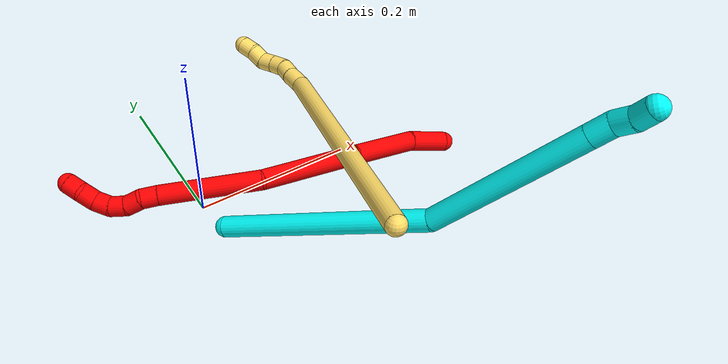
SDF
<sdf version="1.7">
 <world name="default">
  <model name="2">
   <static>0</static>
   <link name="2">
    <collision name="collision-cylinder-e_1_1_4">
     <pose>-0.020069 0.010309 0.005389 -1.0891 -1.04548 0.671513</pose>
     <geometry><cylinder><radius>0.0125</radius><length>0.046394</length></cylinder></geometry>
     <surface>
      <friction><ode><mu>1.16</mu><mu2>1.16</mu2><slip1>0</slip1><slip2>0</slip2></ode></friction>
      <contact><ode><kp>1e+06</kp><kd>1</kd><max_vel>0</max_vel><min_depth>0.001</min_depth></ode></contact>
     </surface>
    </collision>
    <visual name="visual-cylinder-e_1_1_4">
     <pose>-0.020069 0.010309 0.005389 -1.0891 -1.04548 0.671513</pose>
     <geometry><cylinder><radius>0.0125</radius><length>0.046394</length></cylinder></geometry>
     <material><ambient>1 0 0 1</ambient></material>
    </visual>
    <collision name="collision-cylinder-e_2_4_5">
     <pose>-0.078886 0.028485 0.021374 -0.638626 -1.24255 0.464795</pose>
     <geometry><cylinder><radius>0.0125</radius><length>0.081866</length></cylinder></geometry>
     <surface>
      <friction><ode><mu>1.16</mu><mu2>1.16</mu2><slip1>0</slip1><slip2>0</slip2></ode></friction>
      <contact><ode><kp>1e+06</kp><kd>1</kd><max_vel>0</max_vel><min_depth>0.001</min_depth></ode></contact>
     </surface>
    </collision>
    <visual name="visual-cylinder-e_2_4_5">
     <pose>-0.078886 0.028485 0.021374 -0.638626 -1.24255 0.464795</pose>
     <geometry><cylinder><radius>0.0125</radius><length>0.081866</length></cylinder></geometry>
     <material><ambient>1 0 0 1</ambient></material>
    </visual>
    <collision name="collision-cylinder-e_3_5_6">
     <pose>-0.177614 0.050603 0.040501 -1.0314 -1.30063 0.814248</pose>
     <geometry><cylinder><radius>0.0125</radius><length>0.124476</length></cylinder></geometry>
     <surface>
      <friction><ode><mu>1.16</mu><mu2>1.16</mu2><slip1>0</slip1><slip2>0</slip2></ode></friction>
      <contact><ode><kp>1e+06</kp><kd>1</kd><max_vel>0</max_vel><min_depth>0.001</min_depth></ode></contact>
     </surface>
    </collision>
    <visual name="visual-cylinder-e_3_5_6">
     <pose>-0.177614 0.050603 0.040501 -1.0314 -1.30063 0.814248</pose>
     <geometry><cylinder><radius>0.0125</radius><length>0.124476</length></cylinder></geometry>
     <material><ambient>1 0 0 1</ambient></material>
    </visual>
    <collision name="collision-cylinder-e_4_6_7">
     <pose>-0.294517 0.091608 0.043057 -1.79059 -1.12201 1.33008</pose>
     <geometry><cylinder><radius>0.0125</radius><length>0.126358</length></cylinder></geometry>
     <surface>
      <friction><ode><mu>1.16</mu><mu2>1.16</mu2><slip1>0</slip1><slip2>0</slip2></ode></friction>
      <contact><ode><kp>1e+06</kp><kd>1</kd><max_vel>0</max_vel><min_depth>0.001</min_depth></ode></contact>
     </surface>
    </collision>
    <visual name="visual-cylinder-e_4_6_7">
     <pose>-0.294517 0.091608 0.043057 -1.79059 -1.12201 1.33008</pose>
     <geometry><cylinder><radius>0.0125</radius><length>0.126358</length></cylinder></geometry>
     <material><ambient>1 0 0 1</ambient></material>
    </visual>
    <collision name="collision-cylinder-e_5_7_8">
     <pose>-0.361157 0.121968 0.036587 -1.70675 -1.21227 1.34271</pose>
     <geometry><cylinder><radius>0.0125</radius><length>0.020755</length></cylinder></geometry>
     <surface>
      <friction><ode><mu>1.16</mu><mu2>1.16</mu2><slip1>0</slip1><slip2>0</slip2></ode></friction>
      <contact><ode><kp>1e+06</kp><kd>1</kd><max_vel>0</max_vel><min_depth>0.001</min_depth></ode></contact>
     </surface>
    </collision>
    <visual name="visual-cylinder-e_5_7_8">
     <pose>-0.361157 0.121968 0.036587 -1.70675 -1.21227 1.34271</pose>
     <geometry><cylinder><radius>0.0125</radius><length>0.020755</length></cylinder></geometry>
     <material><ambient>1 0 0 1</ambient></material>
    </visual>
    <collision name="collision-cylinder-e_6_8_9">
     <pose>-0.37996 0.127688 0.032376 -2.62487 -1.1309 2.35237</pose>
     <geometry><cylinder><radius>0.0125</radius><length>0.020081</length></cylinder></geometry>
     <surface>
      <friction><ode><mu>1.16</mu><mu2>1.16</mu2><slip1>0</slip1><slip2>0</slip2></ode></friction>
      <contact><ode><kp>1e+06</kp><kd>1</kd><max_vel>0</max_vel><min_depth>0.001</min_depth></ode></contact>
     </surface>
    </collision>
    <visual name="visual-cylinder-e_6_8_9">
     <pose>-0.37996 0.127688 0.032376 -2.62487 -1.1309 2.35237</pose>
     <geometry><cylinder><radius>0.0125</radius><length>0.020081</length></cylinder></geometry>
     <material><ambient>1 0 0 1</ambient></material>
    </visual>
    <collision name="collision-cylinder-e_7_9_10">
     <pose>-0.397257 0.135188 0.026735 -1.91357 -0.96234 1.27499</pose>
     <geometry><cylinder><radius>0.0125</radius><length>0.020017</length></cylinder></geometry>
     <surface>
      <friction><ode><mu>1.16</mu><mu2>1.16</mu2><slip1>0</slip1><slip2>0</slip2></ode></friction>
      <contact><ode><kp>1e+06</kp><kd>1</kd><max_vel>0</max_vel><min_depth>0.001</min_depth></ode></contact>
     </surface>
    </collision>
    <visual name="visual-cylinder-e_7_9_10">
     <pose>-0.397257 0.135188 0.026735 -1.91357 -0.96234 1.27499</pose>
     <geometry><cylinder><radius>0.0125</radius><length>0.020017</length></cylinder></geometry>
     <material><ambient>1 0 0 1</ambient></material>
    </visual>
    <collision name="collision-cylinder-e_8_10_11">
     <pose>-0.411472 0.148606 0.024867 -1.56398 -0.641886 0.637814</pose>
     <geometry><cylinder><radius>0.0125</radius><length>0.020052</length></cylinder></geometry>
     <surface>
      <friction><ode><mu>1.16</mu><mu2>1.16</mu2><slip1>0</slip1><slip2>0</slip2></ode></friction>
      <contact><ode><kp>1e+06</kp><kd>1</kd><max_vel>0</max_vel><min_depth>0.001</min_depth></ode></contact>
     </surface>
    </collision>
    <visual name="visual-cylinder-e_8_10_11">
     <pose>-0.411472 0.148606 0.024867 -1.56398 -0.641886 0.637814</pose>
     <geometry><cylinder><radius>0.0125</radius><length>0.020052</length></cylinder></geometry>
     <material><ambient>1 0 0 1</ambient></material>
    </visual>
    <collision name="collision-cylinder-e_9_11_12">
     <pose>-0.421968 0.165051 0.027927 -1.22783 -0.46599 0.33142</pose>
     <geometry><cylinder><radius>0.0125</radius><length>0.020001</length></cylinder></geometry>
     <surface>
      <friction><ode><mu>1.16</mu><mu2>1.16</mu2><slip1>0</slip1><slip2>0</slip2></ode></friction>
      <contact><ode><kp>1e+06</kp><kd>1</kd><max_vel>0</max_vel><min_depth>0.001</min_depth></ode></contact>
     </surface>
    </collision>
    <visual name="visual-cylinder-e_9_11_12">
     <pose>-0.421968 0.165051 0.027927 -1.22783 -0.46599 0.33142</pose>
     <geometry><cylinder><radius>0.0125</radius><length>0.020001</length></cylinder></geometry>
     <material><ambient>1 0 0 1</ambient></material>
    </visual>
    <collision name="collision-cylinder-e_10_12_2">
     <pose>-0.430517 0.1826 0.030647 -1.60191 -0.417652 0.430454</pose>
     <geometry><cylinder><radius>0.0125</radius><length>0.02</length></cylinder></geometry>
     <surface>
      <friction><ode><mu>1.16</mu><mu2>1.16</mu2><slip1>0</slip1><slip2>0</slip2></ode></friction>
      <contact><ode><kp>1e+06</kp><kd>1</kd><max_vel>0</max_vel><min_depth>0.001</min_depth></ode></contact>
     </surface>
    </collision>
    <visual name="visual-cylinder-e_10_12_2">
     <pose>-0.430517 0.1826 0.030647 -1.60191 -0.417652 0.430454</pose>
     <geometry><cylinder><radius>0.0125</radius><length>0.02</length></cylinder></geometry>
     <material><ambient>1 0 0 1</ambient></material>
    </visual>
    <collision name="collision-sphere-2">
     <pose>-0.434573 0.191737 0.030362 0 -0 0</pose>
     <geometry><sphere><radius>0.0125</radius></sphere></geometry>
     <surface>
      <friction><ode><mu>1.16</mu><mu2>1.16</mu2><slip1>0</slip1><slip2>0</slip2></ode></friction>
      <contact><ode><kp>1e+06</kp><kd>1</kd><max_vel>0</max_vel><min_depth>0.001</min_depth></ode></contact>
     </surface>
    </collision>
    <visual name="visual-sphere-2">
     <pose>-0.434573 0.191737 0.030362 0 -0 0</pose>
     <geometry><sphere><radius>0.0125</radius></sphere></geometry>
     <material><ambient>1 0 0 1</ambient></material>
    </visual>
    <collision name="collision-sphere-12">
     <pose>-0.426461 0.173464 0.030931 0 -0 0</pose>
     <geometry><sphere><radius>0.0125</radius></sphere></geometry>
     <surface>
      <friction><ode><mu>1.16</mu><mu2>1.16</mu2><slip1>0</slip1><slip2>0</slip2></ode></friction>
      <contact><ode><kp>1e+06</kp><kd>1</kd><max_vel>0</max_vel><min_depth>0.001</min_depth></ode></contact>
     </surface>
    </collision>
    <visual name="visual-sphere-12">
     <pose>-0.426461 0.173464 0.030931 0 -0 0</pose>
     <geometry><sphere><radius>0.0125</radius></sphere></geometry>
     <material><ambient>1 0 0 1</ambient></material>
    </visual>
    <collision name="collision-sphere-11">
     <pose>-0.417474 0.156637 0.024922 0 -0 0</pose>
     <geometry><sphere><radius>0.0125</radius></sphere></geometry>
     <surface>
      <friction><ode><mu>1.16</mu><mu2>1.16</mu2><slip1>0</slip1><slip2>0</slip2></ode></friction>
      <contact><ode><kp>1e+06</kp><kd>1</kd><max_vel>0</max_vel><min_depth>0.001</min_depth></ode></contact>
     </surface>
    </collision>
    <visual name="visual-sphere-11">
     <pose>-0.417474 0.156637 0.024922 0 -0 0</pose>
     <geometry><sphere><radius>0.0125</radius></sphere></geometry>
     <material><ambient>1 0 0 1</ambient></material>
    </visual>
    <collision name="collision-sphere-10">
     <pose>-0.405469 0.140576 0.024813 0 -0 0</pose>
     <geometry><sphere><radius>0.0125</radius></sphere></geometry>
     <surface>
      <friction><ode><mu>1.16</mu><mu2>1.16</mu2><slip1>0</slip1><slip2>0</slip2></ode></friction>
      <contact><ode><kp>1e+06</kp><kd>1</kd><max_vel>0</max_vel><min_depth>0.001</min_depth></ode></contact>
     </surface>
    </collision>
    <visual name="visual-sphere-10">
     <pose>-0.405469 0.140576 0.024813 0 -0 0</pose>
     <geometry><sphere><radius>0.0125</radius></sphere></geometry>
     <material><ambient>1 0 0 1</ambient></material>
    </visual>
    <collision name="collision-sphere-9">
     <pose>-0.389045 0.1298 0.028658 0 -0 0</pose>
     <geometry><sphere><radius>0.0125</radius></sphere></geometry>
     <surface>
      <friction><ode><mu>1.16</mu><mu2>1.16</mu2><slip1>0</slip1><slip2>0</slip2></ode></friction>
      <contact><ode><kp>1e+06</kp><kd>1</kd><max_vel>0</max_vel><min_depth>0.001</min_depth></ode></contact>
     </surface>
    </collision>
    <visual name="visual-sphere-9">
     <pose>-0.389045 0.1298 0.028658 0 -0 0</pose>
     <geometry><sphere><radius>0.0125</radius></sphere></geometry>
     <material><ambient>1 0 0 1</ambient></material>
    </visual>
    <collision name="collision-sphere-4">
     <pose>-0.040138 0.020618 0.010779 0 -0 0</pose>
     <geometry><sphere><radius>0.0125</radius></sphere></geometry>
     <surface>
      <friction><ode><mu>1.16</mu><mu2>1.16</mu2><slip1>0</slip1><slip2>0</slip2></ode></friction>
      <contact><ode><kp>1e+06</kp><kd>1</kd><max_vel>0</max_vel><min_depth>0.001</min_depth></ode></contact>
     </surface>
    </collision>
    <visual name="visual-sphere-4">
     <pose>-0.040138 0.020618 0.010779 0 -0 0</pose>
     <geometry><sphere><radius>0.0125</radius></sphere></geometry>
     <material><ambient>1 0 0 1</ambient></material>
    </visual>
    <collision name="collision-sphere-1">
     <geometry><sphere><radius>0.0125</radius></sphere></geometry>
     <surface>
      <friction><ode><mu>1.16</mu><mu2>1.16</mu2><slip1>0</slip1><slip2>0</slip2></ode></friction>
      <contact><ode><kp>1e+06</kp><kd>1</kd><max_vel>0</max_vel><min_depth>0.001</min_depth></ode></contact>
     </surface>
    </collision>
    <visual name="visual-sphere-1">
     <geometry><sphere><radius>0.0125</radius></sphere></geometry>
     <material><ambient>1 0 0 1</ambient></material>
    </visual>
    <collision name="collision-sphere-8">
     <pose>-0.370875 0.125575 0.036093 0 -0 0</pose>
     <geometry><sphere><radius>0.0125</radius></sphere></geometry>
     <surface>
      <friction><ode><mu>1.16</mu><mu2>1.16</mu2><slip1>0</slip1><slip2>0</slip2></ode></friction>
      <contact><ode><kp>1e+06</kp><kd>1</kd><max_vel>0</max_vel><min_depth>0.001</min_depth></ode></contact>
     </surface>
    </collision>
    <visual name="visual-sphere-8">
     <pose>-0.370875 0.125575 0.036093 0 -0 0</pose>
     <geometry><sphere><radius>0.0125</radius></sphere></geometry>
     <material><ambient>1 0 0 1</ambient></material>
    </visual>
    <collision name="collision-sphere-5">
     <pose>-0.117634 0.036351 0.03197 0 -0 0</pose>
     <geometry><sphere><radius>0.0125</radius></sphere></geometry>
     <surface>
      <friction><ode><mu>1.16</mu><mu2>1.16</mu2><slip1>0</slip1><slip2>0</slip2></ode></friction>
      <contact><ode><kp>1e+06</kp><kd>1</kd><max_vel>0</max_vel><min_depth>0.001</min_depth></ode></contact>
     </surface>
    </collision>
    <visual name="visual-sphere-5">
     <pose>-0.117634 0.036351 0.03197 0 -0 0</pose>
     <geometry><sphere><radius>0.0125</radius></sphere></geometry>
     <material><ambient>1 0 0 1</ambient></material>
    </visual>
    <collision name="collision-sphere-6">
     <pose>-0.237594 0.064856 0.049033 0 -0 0</pose>
     <geometry><sphere><radius>0.0125</radius></sphere></geometry>
     <surface>
      <friction><ode><mu>1.16</mu><mu2>1.16</mu2><slip1>0</slip1><slip2>0</slip2></ode></friction>
      <contact><ode><kp>1e+06</kp><kd>1</kd><max_vel>0</max_vel><min_depth>0.001</min_depth></ode></contact>
     </surface>
    </collision>
    <visual name="visual-sphere-6">
     <pose>-0.237594 0.064856 0.049033 0 -0 0</pose>
     <geometry><sphere><radius>0.0125</radius></sphere></geometry>
     <material><ambient>1 0 0 1</ambient></material>
    </visual>
    <collision name="collision-sphere-7">
     <pose>-0.35144 0.11836 0.03708 0 -0 0</pose>
     <geometry><sphere><radius>0.0125</radius></sphere></geometry>
     <surface>
      <friction><ode><mu>1.16</mu><mu2>1.16</mu2><slip1>0</slip1><slip2>0</slip2></ode></friction>
      <contact><ode><kp>1e+06</kp><kd>1</kd><max_vel>0</max_vel><min_depth>0.001</min_depth></ode></contact>
     </surface>
    </collision>
    <visual name="visual-sphere-7">
     <pose>-0.35144 0.11836 0.03708 0 -0 0</pose>
     <geometry><sphere><radius>0.0125</radius></sphere></geometry>
     <material><ambient>1 0 0 1</ambient></material>
    </visual>
    <inertial>
     <pose>-0.230182 0.076838 0.032193 0 -0 0</pose>
     <mass>0.5</mass>
     <inertia>
      <ixx>0.000154</ixx>
      <ixy>0</ixy>
      <ixz>0</ixz>
      <iyy>0.000491</iyy>
      <iyz>0</iyz>
      <izz>0.000249</izz>
     </inertia>
    </inertial>
   </link>
   <pose>0.31581 -0.066591 0.011584 0.387504 -0.183527 0.012419</pose>
  </model>
  <model name="3">
   <static>0</static>
   <link name="3">
    <collision name="collision-cylinder-e_1_1_4">
     <pose>-0.012955 -0.010179 0.123919 0.081958 -0.103815 -0.00426</pose>
     <geometry><cylinder><radius>0.0125</radius><length>0.25002</length></cylinder></geometry>
     <surface>
      <friction><ode><mu>1.16</mu><mu2>1.16</mu2><slip1>0</slip1><slip2>0</slip2></ode></friction>
      <contact><ode><kp>1e+06</kp><kd>1</kd><max_vel>0</max_vel><min_depth>0.001</min_depth></ode></contact>
     </surface>
    </collision>
    <visual name="visual-cylinder-e_1_1_4">
     <pose>-0.012955 -0.010179 0.123919 0.081958 -0.103815 -0.00426</pose>
     <geometry><cylinder><radius>0.0125</radius><length>0.25002</length></cylinder></geometry>
     <material><ambient>0.003922 1 0.996078 1</ambient></material>
    </visual>
    <collision name="collision-cylinder-e_2_4_5">
     <pose>0.003394 -0.013154 0.334978 -0.082488 0.323372 -0.013462</pose>
     <geometry><cylinder><radius>0.0125</radius><length>0.184432</length></cylinder></geometry>
     <surface>
      <friction><ode><mu>1.16</mu><mu2>1.16</mu2><slip1>0</slip1><slip2>0</slip2></ode></friction>
      <contact><ode><kp>1e+06</kp><kd>1</kd><max_vel>0</max_vel><min_depth>0.001</min_depth></ode></contact>
     </surface>
    </collision>
    <visual name="visual-cylinder-e_2_4_5">
     <pose>0.003394 -0.013154 0.334978 -0.082488 0.323372 -0.013462</pose>
     <geometry><cylinder><radius>0.0125</radius><length>0.184432</length></cylinder></geometry>
     <material><ambient>0.003922 1 0.996078 1</ambient></material>
    </visual>
    <collision name="collision-cylinder-e_3_5_6">
     <pose>0.036544 -0.005002 0.433556 -0.082598 0.32339 -0.013481</pose>
     <geometry><cylinder><radius>0.0125</radius><length>0.024213</length></cylinder></geometry>
     <surface>
      <friction><ode><mu>1.16</mu><mu2>1.16</mu2><slip1>0</slip1><slip2>0</slip2></ode></friction>
      <contact><ode><kp>1e+06</kp><kd>1</kd><max_vel>0</max_vel><min_depth>0.001</min_depth></ode></contact>
     </surface>
    </collision>
    <visual name="visual-cylinder-e_3_5_6">
     <pose>0.036544 -0.005002 0.433556 -0.082598 0.32339 -0.013481</pose>
     <geometry><cylinder><radius>0.0125</radius><length>0.024213</length></cylinder></geometry>
     <material><ambient>0.003922 1 0.996078 1</ambient></material>
    </visual>
    <collision name="collision-cylinder-e_4_6_7">
     <pose>0.040929 -0.000775 0.454947 -0.318437 0.05123 -0.008228</pose>
     <geometry><cylinder><radius>0.0125</radius><length>0.020982</length></cylinder></geometry>
     <surface>
      <friction><ode><mu>1.16</mu><mu2>1.16</mu2><slip1>0</slip1><slip2>0</slip2></ode></friction>
      <contact><ode><kp>1e+06</kp><kd>1</kd><max_vel>0</max_vel><min_depth>0.001</min_depth></ode></contact>
     </surface>
    </collision>
    <visual name="visual-cylinder-e_4_6_7">
     <pose>0.040929 -0.000775 0.454947 -0.318437 0.05123 -0.008228</pose>
     <geometry><cylinder><radius>0.0125</radius><length>0.020982</length></cylinder></geometry>
     <material><ambient>0.003922 1 0.996078 1</ambient></material>
    </visual>
    <collision name="collision-cylinder-e_5_7_2">
     <pose>0.044528 0.006626 0.473684 -0.438473 0.305598 -0.068601</pose>
     <geometry><cylinder><radius>0.0125</radius><length>0.020354</length></cylinder></geometry>
     <surface>
      <friction><ode><mu>1.16</mu><mu2>1.16</mu2><slip1>0</slip1><slip2>0</slip2></ode></friction>
      <contact><ode><kp>1e+06</kp><kd>1</kd><max_vel>0</max_vel><min_depth>0.001</min_depth></ode></contact>
     </surface>
    </collision>
    <visual name="visual-cylinder-e_5_7_2">
     <pose>0.044528 0.006626 0.473684 -0.438473 0.305598 -0.068601</pose>
     <geometry><cylinder><radius>0.0125</radius><length>0.020354</length></cylinder></geometry>
     <material><ambient>0.003922 1 0.996078 1</ambient></material>
    </visual>
    <collision name="collision-sphere-2">
     <pose>0.04759 0.010746 0.482472 0 -0 0</pose>
     <geometry><sphere><radius>0.0125</radius></sphere></geometry>
     <surface>
      <friction><ode><mu>1.16</mu><mu2>1.16</mu2><slip1>0</slip1><slip2>0</slip2></ode></friction>
      <contact><ode><kp>1e+06</kp><kd>1</kd><max_vel>0</max_vel><min_depth>0.001</min_depth></ode></contact>
     </surface>
    </collision>
    <visual name="visual-sphere-2">
     <pose>0.04759 0.010746 0.482472 0 -0 0</pose>
     <geometry><sphere><radius>0.0125</radius></sphere></geometry>
     <material><ambient>0.003922 1 0.996078 1</ambient></material>
    </visual>
    <collision name="collision-sphere-7">
     <pose>0.041466 0.002505 0.464897 0 -0 0</pose>
     <geometry><sphere><radius>0.0125</radius></sphere></geometry>
     <surface>
      <friction><ode><mu>1.16</mu><mu2>1.16</mu2><slip1>0</slip1><slip2>0</slip2></ode></friction>
      <contact><ode><kp>1e+06</kp><kd>1</kd><max_vel>0</max_vel><min_depth>0.001</min_depth></ode></contact>
     </surface>
    </collision>
    <visual name="visual-sphere-7">
     <pose>0.041466 0.002505 0.464897 0 -0 0</pose>
     <geometry><sphere><radius>0.0125</radius></sphere></geometry>
     <material><ambient>0.003922 1 0.996078 1</ambient></material>
    </visual>
    <collision name="collision-sphere-6">
     <pose>0.040391 -0.004055 0.444996 0 -0 0</pose>
     <geometry><sphere><radius>0.0125</radius></sphere></geometry>
     <surface>
      <friction><ode><mu>1.16</mu><mu2>1.16</mu2><slip1>0</slip1><slip2>0</slip2></ode></friction>
      <contact><ode><kp>1e+06</kp><kd>1</kd><max_vel>0</max_vel><min_depth>0.001</min_depth></ode></contact>
     </surface>
    </collision>
    <visual name="visual-sphere-6">
     <pose>0.040391 -0.004055 0.444996 0 -0 0</pose>
     <geometry><sphere><radius>0.0125</radius></sphere></geometry>
     <material><ambient>0.003922 1 0.996078 1</ambient></material>
    </visual>
    <collision name="collision-sphere-5">
     <pose>0.032697 -0.005949 0.422117 0 -0 0</pose>
     <geometry><sphere><radius>0.0125</radius></sphere></geometry>
     <surface>
      <friction><ode><mu>1.16</mu><mu2>1.16</mu2><slip1>0</slip1><slip2>0</slip2></ode></friction>
      <contact><ode><kp>1e+06</kp><kd>1</kd><max_vel>0</max_vel><min_depth>0.001</min_depth></ode></contact>
     </surface>
    </collision>
    <visual name="visual-sphere-5">
     <pose>0.032697 -0.005949 0.422117 0 -0 0</pose>
     <geometry><sphere><radius>0.0125</radius></sphere></geometry>
     <material><ambient>0.003922 1 0.996078 1</ambient></material>
    </visual>
    <collision name="collision-sphere-1">
     <geometry><sphere><radius>0.0125</radius></sphere></geometry>
     <surface>
      <friction><ode><mu>1.16</mu><mu2>1.16</mu2><slip1>0</slip1><slip2>0</slip2></ode></friction>
      <contact><ode><kp>1e+06</kp><kd>1</kd><max_vel>0</max_vel><min_depth>0.001</min_depth></ode></contact>
     </surface>
    </collision>
    <visual name="visual-sphere-1">
     <geometry><sphere><radius>0.0125</radius></sphere></geometry>
     <material><ambient>0.003922 1 0.996078 1</ambient></material>
    </visual>
    <collision name="collision-sphere-4">
     <pose>-0.025909 -0.020358 0.247839 0 -0 0</pose>
     <geometry><sphere><radius>0.0125</radius></sphere></geometry>
     <surface>
      <friction><ode><mu>1.16</mu><mu2>1.16</mu2><slip1>0</slip1><slip2>0</slip2></ode></friction>
      <contact><ode><kp>1e+06</kp><kd>1</kd><max_vel>0</max_vel><min_depth>0.001</min_depth></ode></contact>
     </surface>
    </collision>
    <visual name="visual-sphere-4">
     <pose>-0.025909 -0.020358 0.247839 0 -0 0</pose>
     <geometry><sphere><radius>0.0125</radius></sphere></geometry>
     <material><ambient>0.003922 1 0.996078 1</ambient></material>
    </visual>
    <inertial>
     <pose>7.4e-05 -0.009947 0.244895 0 -0 0</pose>
     <mass>0.5</mass>
     <inertia>
      <ixx>0.001804</ixx>
      <ixy>0</ixy>
      <ixz>0</ixz>
      <iyy>0.001829</iyy>
      <iyz>0</iyz>
      <izz>6.8e-05</izz>
     </inertia>
    </inertial>
   </link>
   <pose>0.005923 -0.050801 0.011499 0.838969 -0.786137 1.29088</pose>
  </model>
  <model name="5">
   <static>0</static>
   <link name="5">
    <collision name="collision-cylinder-e_1_1_4">
     <pose>0.056428 0.175845 -0.014145 -1.65106 0.30958 -0.335019</pose>
     <geometry><cylinder><radius>0.0125</radius><length>0.370437</length></cylinder></geometry>
     <surface>
      <friction><ode><mu>1.16</mu><mu2>1.16</mu2><slip1>0</slip1><slip2>0</slip2></ode></friction>
      <contact><ode><kp>1e+06</kp><kd>1</kd><max_vel>0</max_vel><min_depth>0.001</min_depth></ode></contact>
     </surface>
    </collision>
    <visual name="visual-cylinder-e_1_1_4">
     <pose>0.056428 0.175845 -0.014145 -1.65106 0.30958 -0.335019</pose>
     <geometry><cylinder><radius>0.0125</radius><length>0.370437</length></cylinder></geometry>
     <material><ambient>1 0.858824 0.4 1</ambient></material>
    </visual>
    <collision name="collision-cylinder-e_2_4_5">
     <pose>0.113132 0.365323 -0.02694 -1.47218 0.020058 -0.018172</pose>
     <geometry><cylinder><radius>0.0125</radius><length>0.027403</length></cylinder></geometry>
     <surface>
      <friction><ode><mu>1.16</mu><mu2>1.16</mu2><slip1>0</slip1><slip2>0</slip2></ode></friction>
      <contact><ode><kp>1e+06</kp><kd>1</kd><max_vel>0</max_vel><min_depth>0.001</min_depth></ode></contact>
     </surface>
    </collision>
    <visual name="visual-cylinder-e_2_4_5">
     <pose>0.113132 0.365323 -0.02694 -1.47218 0.020058 -0.018172</pose>
     <geometry><cylinder><radius>0.0125</radius><length>0.027403</length></cylinder></geometry>
     <material><ambient>1 0.858824 0.4 1</ambient></material>
    </visual>
    <collision name="collision-cylinder-e_3_5_6">
     <pose>0.114475 0.389849 -0.024123 -1.43678 0.09686 -0.084693</pose>
     <geometry><cylinder><radius>0.0125</radius><length>0.022089</length></cylinder></geometry>
     <surface>
      <friction><ode><mu>1.16</mu><mu2>1.16</mu2><slip1>0</slip1><slip2>0</slip2></ode></friction>
      <contact><ode><kp>1e+06</kp><kd>1</kd><max_vel>0</max_vel><min_depth>0.001</min_depth></ode></contact>
     </surface>
    </collision>
    <visual name="visual-cylinder-e_3_5_6">
     <pose>0.114475 0.389849 -0.024123 -1.43678 0.09686 -0.084693</pose>
     <geometry><cylinder><radius>0.0125</radius><length>0.022089</length></cylinder></geometry>
     <material><ambient>1 0.858824 0.4 1</ambient></material>
    </visual>
    <collision name="collision-cylinder-e_4_6_7">
     <pose>0.112885 0.410376 -0.023128 -1.61992 -0.268923 0.282294</pose>
     <geometry><cylinder><radius>0.0125</radius><length>0.020007</length></cylinder></geometry>
     <surface>
      <friction><ode><mu>1.16</mu><mu2>1.16</mu2><slip1>0</slip1><slip2>0</slip2></ode></friction>
      <contact><ode><kp>1e+06</kp><kd>1</kd><max_vel>0</max_vel><min_depth>0.001</min_depth></ode></contact>
     </surface>
    </collision>
    <visual name="visual-cylinder-e_4_6_7">
     <pose>0.112885 0.410376 -0.023128 -1.61992 -0.268923 0.282294</pose>
     <geometry><cylinder><radius>0.0125</radius><length>0.020007</length></cylinder></geometry>
     <material><ambient>1 0.858824 0.4 1</ambient></material>
    </visual>
    <collision name="collision-cylinder-e_5_7_8">
     <pose>0.106149 0.429156 -0.023713 -1.58305 -0.419304 0.424323</pose>
     <geometry><cylinder><radius>0.0125</radius><length>0.020033</length></cylinder></geometry>
     <surface>
      <friction><ode><mu>1.16</mu><mu2>1.16</mu2><slip1>0</slip1><slip2>0</slip2></ode></friction>
      <contact><ode><kp>1e+06</kp><kd>1</kd><max_vel>0</max_vel><min_depth>0.001</min_depth></ode></contact>
     </surface>
    </collision>
    <visual name="visual-cylinder-e_5_7_8">
     <pose>0.106149 0.429156 -0.023713 -1.58305 -0.419304 0.424323</pose>
     <geometry><cylinder><radius>0.0125</radius><length>0.020033</length></cylinder></geometry>
     <material><ambient>1 0.858824 0.4 1</ambient></material>
    </visual>
    <collision name="collision-cylinder-e_6_8_9">
     <pose>0.099238 0.446715 -0.019214 -1.06925 -0.287172 0.17081</pose>
     <geometry><cylinder><radius>0.0125</radius><length>0.020002</length></cylinder></geometry>
     <surface>
      <friction><ode><mu>1.16</mu><mu2>1.16</mu2><slip1>0</slip1><slip2>0</slip2></ode></friction>
      <contact><ode><kp>1e+06</kp><kd>1</kd><max_vel>0</max_vel><min_depth>0.001</min_depth></ode></contact>
     </surface>
    </collision>
    <visual name="visual-cylinder-e_6_8_9">
     <pose>0.099238 0.446715 -0.019214 -1.06925 -0.287172 0.17081</pose>
     <geometry><cylinder><radius>0.0125</radius><length>0.020002</length></cylinder></geometry>
     <material><ambient>1 0.858824 0.4 1</ambient></material>
    </visual>
    <collision name="collision-cylinder-e_7_9_2">
     <pose>0.093124 0.464253 -0.012112 -1.30446 -0.333833 0.255946</pose>
     <geometry><cylinder><radius>0.0125</radius><length>0.020029</length></cylinder></geometry>
     <surface>
      <friction><ode><mu>1.16</mu><mu2>1.16</mu2><slip1>0</slip1><slip2>0</slip2></ode></friction>
      <contact><ode><kp>1e+06</kp><kd>1</kd><max_vel>0</max_vel><min_depth>0.001</min_depth></ode></contact>
     </surface>
    </collision>
    <visual name="visual-cylinder-e_7_9_2">
     <pose>0.093124 0.464253 -0.012112 -1.30446 -0.333833 0.255946</pose>
     <geometry><cylinder><radius>0.0125</radius><length>0.020029</length></cylinder></geometry>
     <material><ambient>1 0.858824 0.4 1</ambient></material>
    </visual>
    <collision name="collision-sphere-2">
     <pose>0.089843 0.473381 -0.009622 0 -0 0</pose>
     <geometry><sphere><radius>0.0125</radius></sphere></geometry>
     <surface>
      <friction><ode><mu>1.16</mu><mu2>1.16</mu2><slip1>0</slip1><slip2>0</slip2></ode></friction>
      <contact><ode><kp>1e+06</kp><kd>1</kd><max_vel>0</max_vel><min_depth>0.001</min_depth></ode></contact>
     </surface>
    </collision>
    <visual name="visual-sphere-2">
     <pose>0.089843 0.473381 -0.009622 0 -0 0</pose>
     <geometry><sphere><radius>0.0125</radius></sphere></geometry>
     <material><ambient>1 0.858824 0.4 1</ambient></material>
    </visual>
    <collision name="collision-sphere-9">
     <pose>0.096405 0.455125 -0.014602 0 -0 0</pose>
     <geometry><sphere><radius>0.0125</radius></sphere></geometry>
     <surface>
      <friction><ode><mu>1.16</mu><mu2>1.16</mu2><slip1>0</slip1><slip2>0</slip2></ode></friction>
      <contact><ode><kp>1e+06</kp><kd>1</kd><max_vel>0</max_vel><min_depth>0.001</min_depth></ode></contact>
     </surface>
    </collision>
    <visual name="visual-sphere-9">
     <pose>0.096405 0.455125 -0.014602 0 -0 0</pose>
     <geometry><sphere><radius>0.0125</radius></sphere></geometry>
     <material><ambient>1 0.858824 0.4 1</ambient></material>
    </visual>
    <collision name="collision-sphere-4">
     <pose>0.112857 0.351691 -0.028289 0 -0 0</pose>
     <geometry><sphere><radius>0.0125</radius></sphere></geometry>
     <surface>
      <friction><ode><mu>1.16</mu><mu2>1.16</mu2><slip1>0</slip1><slip2>0</slip2></ode></friction>
      <contact><ode><kp>1e+06</kp><kd>1</kd><max_vel>0</max_vel><min_depth>0.001</min_depth></ode></contact>
     </surface>
    </collision>
    <visual name="visual-sphere-4">
     <pose>0.112857 0.351691 -0.028289 0 -0 0</pose>
     <geometry><sphere><radius>0.0125</radius></sphere></geometry>
     <material><ambient>1 0.858824 0.4 1</ambient></material>
    </visual>
    <collision name="collision-sphere-1">
     <geometry><sphere><radius>0.0125</radius></sphere></geometry>
     <surface>
      <friction><ode><mu>1.16</mu><mu2>1.16</mu2><slip1>0</slip1><slip2>0</slip2></ode></friction>
      <contact><ode><kp>1e+06</kp><kd>1</kd><max_vel>0</max_vel><min_depth>0.001</min_depth></ode></contact>
     </surface>
    </collision>
    <visual name="visual-sphere-1">
     <geometry><sphere><radius>0.0125</radius></sphere></geometry>
     <material><ambient>1 0.858824 0.4 1</ambient></material>
    </visual>
    <collision name="collision-sphere-8">
     <pose>0.102071 0.438305 -0.023825 0 -0 0</pose>
     <geometry><sphere><radius>0.0125</radius></sphere></geometry>
     <surface>
      <friction><ode><mu>1.16</mu><mu2>1.16</mu2><slip1>0</slip1><slip2>0</slip2></ode></friction>
      <contact><ode><kp>1e+06</kp><kd>1</kd><max_vel>0</max_vel><min_depth>0.001</min_depth></ode></contact>
     </surface>
    </collision>
    <visual name="visual-sphere-8">
     <pose>0.102071 0.438305 -0.023825 0 -0 0</pose>
     <geometry><sphere><radius>0.0125</radius></sphere></geometry>
     <material><ambient>1 0.858824 0.4 1</ambient></material>
    </visual>
    <collision name="collision-sphere-5">
     <pose>0.113406 0.378955 -0.025592 0 -0 0</pose>
     <geometry><sphere><radius>0.0125</radius></sphere></geometry>
     <surface>
      <friction><ode><mu>1.16</mu><mu2>1.16</mu2><slip1>0</slip1><slip2>0</slip2></ode></friction>
      <contact><ode><kp>1e+06</kp><kd>1</kd><max_vel>0</max_vel><min_depth>0.001</min_depth></ode></contact>
     </surface>
    </collision>
    <visual name="visual-sphere-5">
     <pose>0.113406 0.378955 -0.025592 0 -0 0</pose>
     <geometry><sphere><radius>0.0125</radius></sphere></geometry>
     <material><ambient>1 0.858824 0.4 1</ambient></material>
    </visual>
    <collision name="collision-sphere-6">
     <pose>0.115543 0.400743 -0.022654 0 -0 0</pose>
     <geometry><sphere><radius>0.0125</radius></sphere></geometry>
     <surface>
      <friction><ode><mu>1.16</mu><mu2>1.16</mu2><slip1>0</slip1><slip2>0</slip2></ode></friction>
      <contact><ode><kp>1e+06</kp><kd>1</kd><max_vel>0</max_vel><min_depth>0.001</min_depth></ode></contact>
     </surface>
    </collision>
    <visual name="visual-sphere-6">
     <pose>0.115543 0.400743 -0.022654 0 -0 0</pose>
     <geometry><sphere><radius>0.0125</radius></sphere></geometry>
     <material><ambient>1 0.858824 0.4 1</ambient></material>
    </visual>
    <collision name="collision-sphere-7">
     <pose>0.110227 0.420008 -0.023601 0 -0 0</pose>
     <geometry><sphere><radius>0.0125</radius></sphere></geometry>
     <surface>
      <friction><ode><mu>1.16</mu><mu2>1.16</mu2><slip1>0</slip1><slip2>0</slip2></ode></friction>
      <contact><ode><kp>1e+06</kp><kd>1</kd><max_vel>0</max_vel><min_depth>0.001</min_depth></ode></contact>
     </surface>
    </collision>
    <visual name="visual-sphere-7">
     <pose>0.110227 0.420008 -0.023601 0 -0 0</pose>
     <geometry><sphere><radius>0.0125</radius></sphere></geometry>
     <material><ambient>1 0.858824 0.4 1</ambient></material>
    </visual>
    <inertial>
     <pose>0.069534 0.237607 -0.016151 0 -0 0</pose>
     <mass>0.5</mass>
     <inertia>
      <ixx>0.00251</ixx>
      <ixy>0</ixy>
      <ixz>0</ixz>
      <iyy>-0.001188</iyy>
      <iyz>0</iyz>
      <izz>-0.005339</izz>
     </inertia>
    </inertial>
   </link>
   <pose>0.11666 -0.224037 0.117835 -0.156593 0.129612 0.018807</pose>
  </model>
 </world>
</sdf>
